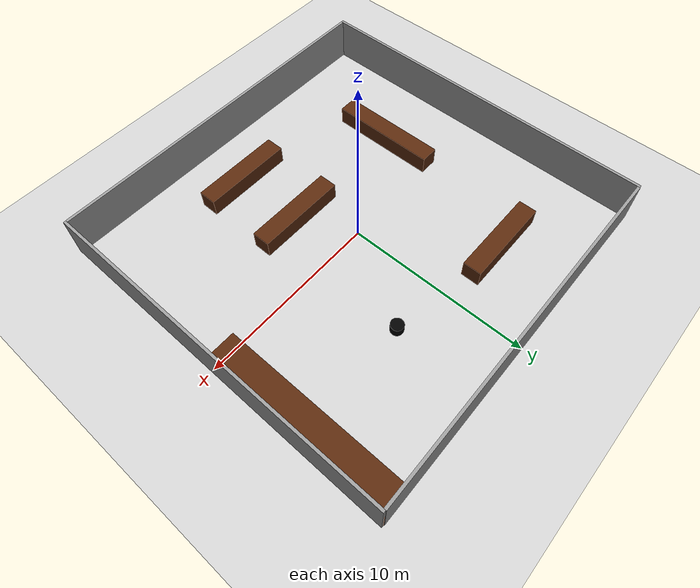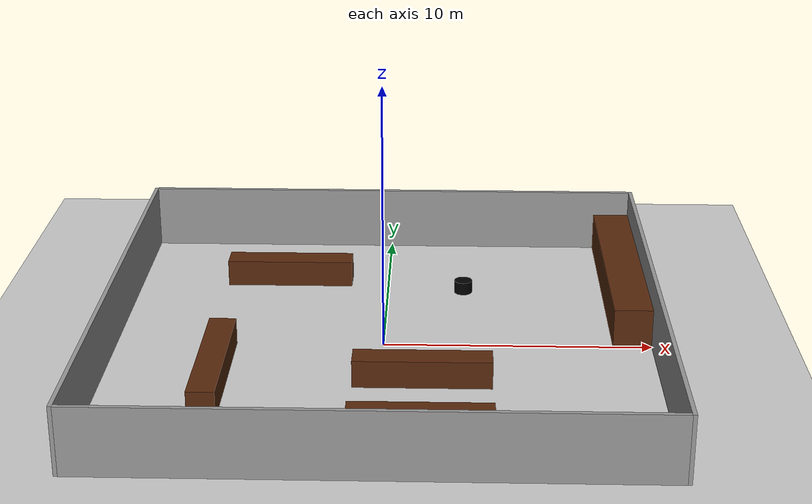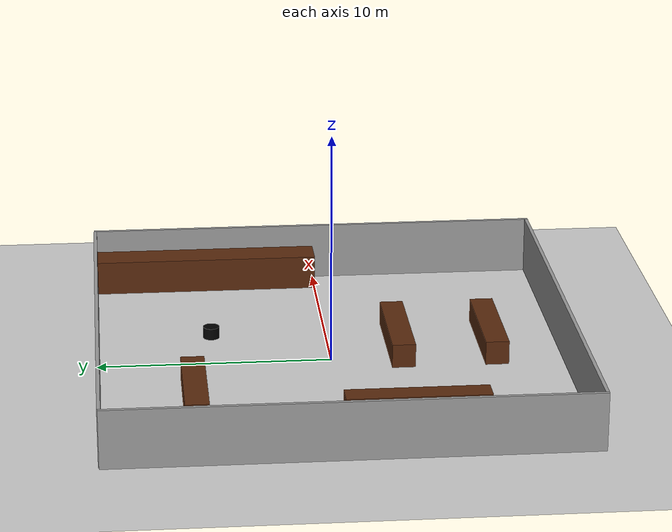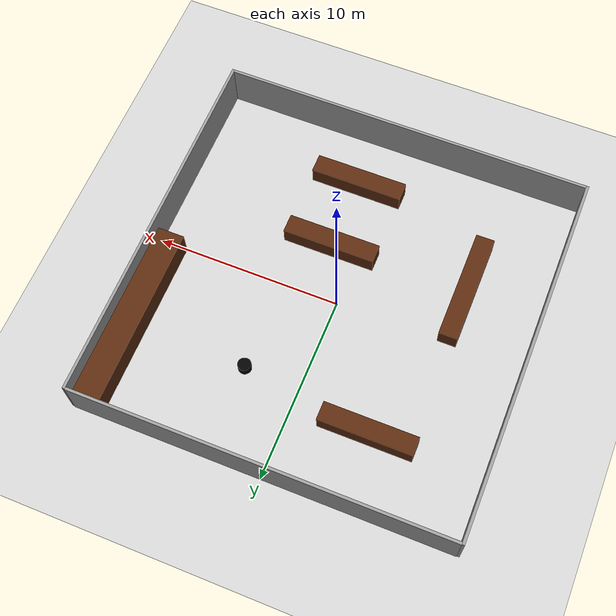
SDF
<?xml version="1.0"?>
<sdf version="1.7">

  <!-- Define the world with physics, plugins, and lighting -->
  <world name="supermarket">
    <!-- Physics Settings -->
    <physics name="default_physics" type="ode">
      <max_step_size>0.001</max_step_size>
      <real_time_factor>1.0</real_time_factor>
    </physics>

    <!-- Gazebo Plugins -->
    <plugin filename="gz-sim-physics-system" name="gz::sim::systems::Physics"/>
    <plugin filename="gz-sim-user-commands-system" name="gz::sim::systems::UserCommands"/>
    <plugin filename="gz-sim-scene-broadcaster-system" name="gz::sim::systems::SceneBroadcaster"/>
    <plugin filename="gz-sim-contact-system" name="gz::sim::systems::Contact"/>
    <plugin filename="gz-sim-sensors-system" name="gz::sim::systems::Sensors">
      <render_engine>ogre2</render_engine>
    </plugin>
    <plugin filename="gz-sim-imu-system" name="gz::sim::systems::Imu"/>

    <!-- Light Source -->
    <light type="directional" name="sun">
      <cast_shadows>false</cast_shadows>
      <pose>0 0 10 0 0 0</pose>
      <diffuse>0.8 0.8 0.8 1</diffuse>
      <specular>0.2 0.2 0.2 1</specular>
      <attenuation>
        <range>1000</range>
        <constant>0.9</constant>
        <linear>0.01</linear>
        <quadratic>0.001</quadratic>
      </attenuation>
      <direction>-0.5 0.1 -0.9</direction>
    </light>

    <!-- Gravity Settings -->
    <gravity>0 0 -9.81</gravity>

    <!-- Ground Plane to Prevent Objects from Falling -->
    <model name="ground_plane">
      <static>true</static>
      <link name="link">
        <collision name="collision">
          <geometry>
            <plane>
              <normal>0 0 1</normal>
              <size>200 200</size>
            </plane>
          </geometry>
        </collision>
        <visual name="visual">
          <geometry>
            <plane>
              <normal>0 0 1</normal>
              <size>200 200</size>
            </plane>
          </geometry>
          <material>
            <ambient>0.8 0.8 0.8 1</ambient>
            <diffuse>0.8 0.8 0.8 1</diffuse>
            <specular>0.8 0.8 0.8 1</specular>
          </material>
        </visual>
      </link>
    </model>

    <!-- Supermarket Model with Walls -->
    <model name="supermarket">
      <pose>0.0 0.0 0.0 0.0 0.0 0.0</pose>
      <static>true</static>

    <link name='Wall_0'>
      <collision name='Wall_0_Collision'>
        <geometry>
          <box>
            <size>20 0.15 2.5</size>
          </box>
        </geometry>
        <pose>0 0 1.25 0 -0 0</pose>
      </collision>
      <visual name='Wall_0_Visual'>
        <pose>0 0 1.25 0 -0 0</pose>
        <geometry>
          <box>
            <size>20 0.15 2.5</size>
          </box>
        </geometry>
        <material>
          <script>
            <uri>file://media/materials/scripts/gazebo.material</uri>
            <name>Gazebo/Grey</name>
          </script>
          <ambient>1 1 1 1</ambient>
        </material>
        <meta>
          <layer>0</layer>
        </meta>
      </visual>
      <pose>0 -9.94541 0 0 -0 3.14159</pose>
    </link>

    <link name='Wall_1'>
      <collision name='Wall_1_Collision'>
        <geometry>
          <box>
            <size>20 0.15 2.5</size>
          </box>
        </geometry>
        <pose>0 0 1.25 0 -0 0</pose>
      </collision>
      <visual name='Wall_1_Visual'>
        <pose>0 0 1.25 0 -0 0</pose>
        <geometry>
          <box>
            <size>20 0.15 2.5</size>
          </box>
        </geometry>
        <material>
          <script>
            <uri>file://media/materials/scripts/gazebo.material</uri>
            <name>Gazebo/Grey</name>
          </script>
          <ambient>1 1 1 1</ambient>
        </material>
        <meta>
          <layer>0</layer>
        </meta>
      </visual>
      <pose>10.067 -0.012432 0 0 -0 -1.5708</pose>
    </link>

    <link name='Wall_2'>
      <collision name='Wall_2_Collision'>
        <geometry>
          <box>
            <size>20 0.15 2.5</size>
          </box>
        </geometry>
        <pose>0 0 1.25 0 -0 0</pose>
      </collision>
      <visual name='Wall_2_Visual'>
        <pose>0 0 1.25 0 -0 0</pose>
        <geometry>
          <box>
            <size>20 0.15 2.5</size>
          </box>
        </geometry>
        <material>
          <script>
            <uri>file://media/materials/scripts/gazebo.material</uri>
            <name>Gazebo/Grey</name>
          </script>
          <ambient>1 1 1 1</ambient>
        </material>
        <meta>
          <layer>0</layer>
        </meta>
      </visual>
      <pose>0 9.94541 0 0 -0 0</pose>
    </link>

    <link name='Wall_3'>
      <collision name='Wall_3_Collision'>
        <geometry>
          <box>
            <size>20 0.15 2.5</size>
          </box>
        </geometry>
        <pose>0 0 1.25 0 -0 0</pose>
      </collision>
      <visual name='Wall_3_Visual'>
        <pose>0 0 1.25 0 -0 0</pose>
        <geometry>
          <box>
            <size>20 0.15 2.5</size>
          </box>
        </geometry>
        <material>
          <script>
            <uri>file://media/materials/scripts/gazebo.material</uri>
            <name>Gazebo/Grey</name>
          </script>
          <ambient>1 1 1 1</ambient>
        </material>
        <meta>
          <layer>0</layer>
        </meta>
      </visual>
      <pose>-10.067 -0.012432 0 0 -0 -1.5708</pose>
    </link>

    <link name='vegetables'>
      <collision name='vegetables_Collision'>
        <geometry>
          <box>
            <size>5 1 1.5</size>
          </box>
        </geometry>
        <pose>0 0 0.75 0 0 0</pose>
      </collision>
      <visual name='vegetables_Visual'>
        <pose>0 0 0.75 0 0 0</pose>
        <geometry>
          <box>
            <size>5 1 1.5</size>
          </box>
        </geometry>
        <material>
        <ambient>0.35 0.16 0.05 1</ambient>   <!-- Darker brown -->
        <diffuse>0.35 0.16 0.05 1</diffuse>
        <specular>0.2 0.2 0.2 1</specular>
        </material>
        <meta>
          <layer>0</layer>
        </meta>
      </visual>
      <pose>1.5 -7.0 -0.5 0 -0 0</pose>
    </link>

    <link name='fruits'>
      <collision name='fruits_Collision'>
        <geometry>
          <box>
            <size>5 1 1.5</size>
          </box>
        </geometry>
        <pose>0 0 0.75 0 -0 0</pose>
      </collision>
      <visual name='fruits_Visual'>
        <pose>0 0 0.75 0 -0 0</pose>
        <geometry>
          <box>
            <size>5 1 1.5</size>
          </box>
        </geometry>
        <material>
        <ambient>0.35 0.16 0.05 1</ambient>   <!-- Darker brown -->
        <diffuse>0.35 0.16 0.05 1</diffuse>
        <specular>0.2 0.2 0.2 1</specular>
        </material>
        <meta>
          <layer>0</layer>
        </meta>
      </visual>
      <pose>1.5 -3.0 -0.5 0 -0 0</pose>
    </link>

    <link name='dairies'>
      <collision name='dairies_Collision'>
        <geometry>
          <box>
            <size>10.0 1.5 1.5</size>
          </box>
        </geometry>
        <pose>0 0 0.75 0 -0 0</pose>
      </collision>
      <visual name='dairies_Visual'>
        <pose>0 0 0.75 0 -0 0</pose>
        <geometry>
          <box>
            <size>10.0 1.5 1.5</size>
          </box>
        </geometry>
        <material>
        <ambient>0.35 0.16 0.05 1</ambient>   <!-- Darker brown -->
        <diffuse>0.35 0.16 0.05 1</diffuse>
        <specular>0.2 0.2 0.2 1</specular>
        </material>
        <meta>
          <layer>0</layer>
        </meta>
      </visual>
      <pose>9.3 5 0 0 0 1.5708</pose>
    </link>

    <link name='sweets'>
      <collision name='sweets_Collision'>
        <geometry>
          <box>
            <size>6 1 1.5</size>
          </box>
        </geometry>
        <pose>0 0 0.75 0 -0 0</pose>
      </collision>
      <visual name='sweets_Visual'>
        <pose>0 0 0.75 0 -0 0</pose>
        <geometry>
          <box>
            <size>6 1 1.5</size>
          </box>
        </geometry>
        <material>
          <ambient>0.35 0.16 0.05 1</ambient>   <!-- Darker brown -->
          <diffuse>0.35 0.16 0.05 1</diffuse>
          <specular>0.2 0.2 0.2 1</specular>
          </material>
        <meta>
          <layer>0</layer>
        </meta>
      </visual>
      <pose>-6.0 -3.0 -0.5 0 0 1.5708</pose>
    </link>

    <link name='drinks'>
      <collision name='sweets_Collision'>
        <geometry>
          <box>
            <size>5 1 1.5</size>
          </box>
        </geometry>
        <pose>0 0 0.75 0 -0 0</pose>
      </collision>
      <visual name='sweets_Visual'>
        <pose>0 0 0.75 0 -0 0</pose>
        <geometry>
          <box>
            <size>5 1 1.5</size>
          </box>
        </geometry>
        <material>
          <ambient>0.35 0.16 0.05 1</ambient>   <!-- Darker brown -->
          <diffuse>0.35 0.16 0.05 1</diffuse>
          <specular>0.2 0.2 0.2 1</specular>
          </material>
        <meta>
          <layer>0</layer>
        </meta>
      </visual>
      <pose>-4.0 6.0 -0.5 0 0 0</pose>
    </link>

  <model name='accessories'>
  <static>true</static>
  <pose>3 5 0 0 0 0</pose>
  <link name='link'>
    <collision name='collision'>
      <pose>0 0 0.25 0 0 0</pose>
      <geometry>
        <cylinder>
          <radius>0.35</radius>
          <length>0.5</length>
        </cylinder>
      </geometry>
    </collision>
    <visual name='visual'>
      <pose>0 0 0.25 0 0 0</pose>
      <geometry>
        <cylinder>
          <radius>0.35</radius>
          <length>0.5</length>
        </cylinder>
      </geometry>
      <material>
          <ambient>0 0 0 1</ambient>
          <diffuse>0 0 0 1</diffuse>
          <specular>0.3 0.3 0.3 1</specular>
      </material>
    </visual>
  </link>
   </model>

    </model>
  </world>
</sdf>
